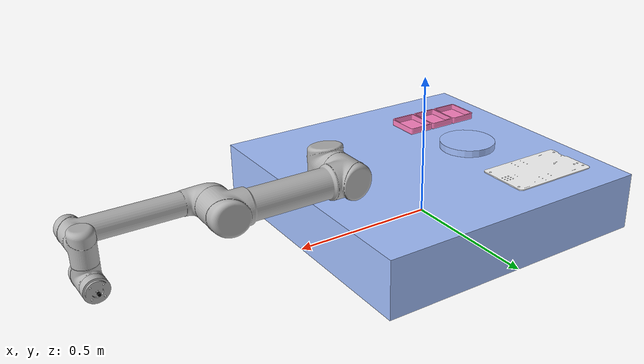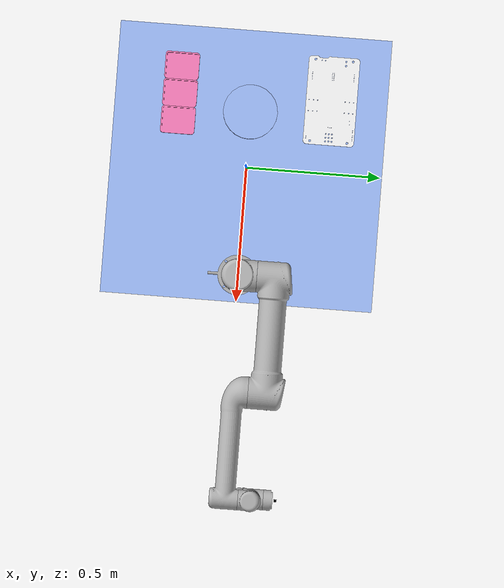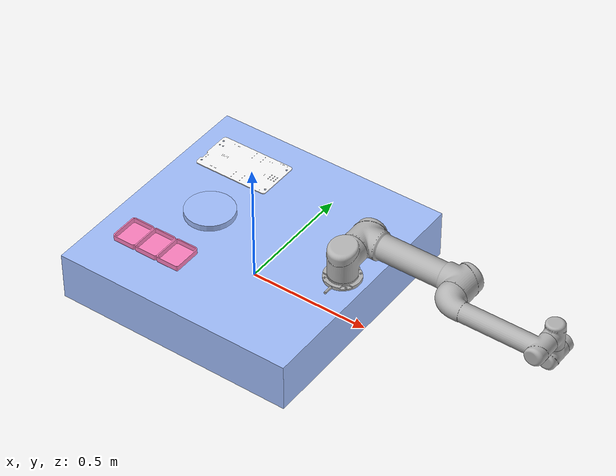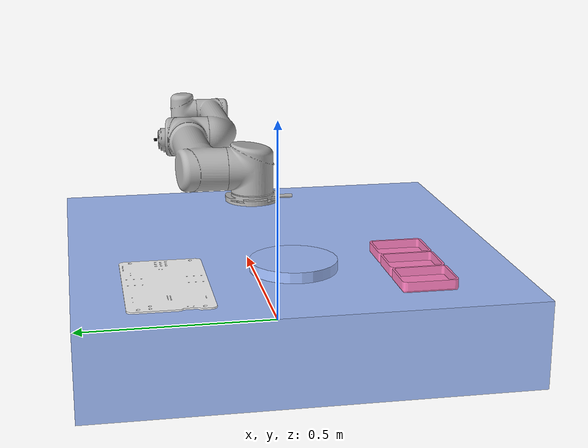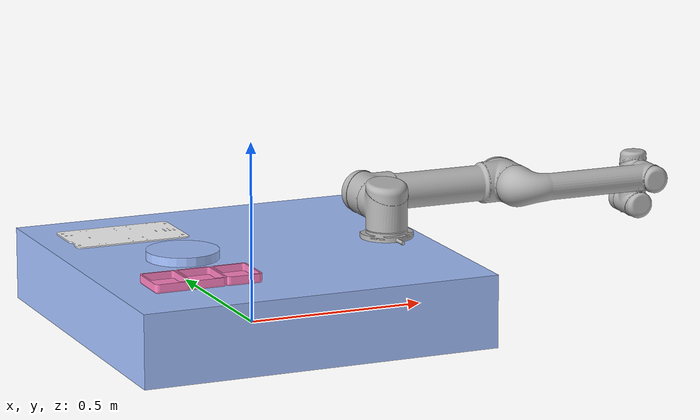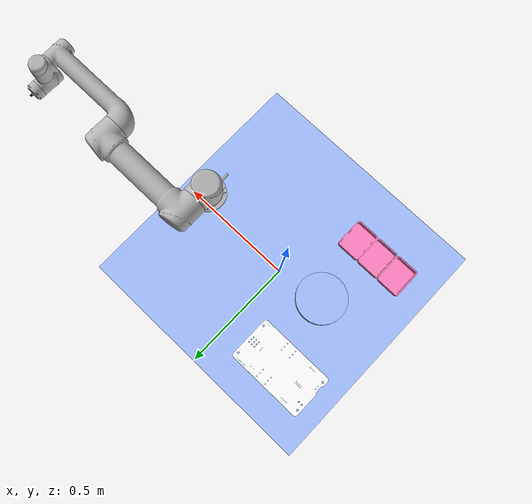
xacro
<?xml version="1.0"?>
<robot xmlns:xacro="http://ros.org/wiki/xacro"
       name="ur5" >

  <!-- common stuff -->
  <xacro:include filename="$(find subbotinny_ur5_vacuum)/urdf/ur5.material.xacro" />
  <!-- ur5 -->
  <xacro:include filename="$(find subbotinny_ur5_vacuum)/urdf/ur5.urdf.xacro" />
  <xacro:include filename="$(find subbotinny_ur5_vacuum)/urdf/common.gazebo.xacro" />
  <xacro:include filename="$(find subbotinny_ur5_vacuum)/urdf/pcb_components.urdf.xacro" />

  <xacro:macro name="box" params="suffix x y">
    <link name="box_${suffix}">
      <visual>
        <geometry>
          <mesh scale = "0.005 0.005 0.005" filename="package://subbotinny_ur5_vacuum/meshes/box.stl"/>
        </geometry>
        <xacro:insert_block name="pink" />
      </visual>
      <collision>
        <geometry>
          <mesh scale = "0.005 0.005 0.005" filename="package://subbotinny_ur5_vacuum/meshes/box.stl"/>
        </geometry>
      </collision>
    </link>
    <joint name="box_${suffix}_joint" type="fixed">
      <parent link="table" />
      <child link="box_${suffix}" />
      <origin xyz="${x * -0.1} ${y * -0.1} 0.2" />
    </joint>
  </xacro:macro>

  <!-- arm -->
  <xacro:ur5_robot prefix="" joint_limited="true"
    shoulder_pan_lower_limit="${-2*pi}" shoulder_pan_upper_limit="${2*pi}"
    shoulder_lift_lower_limit="${-pi}" shoulder_lift_upper_limit="${pi}"
    elbow_joint_lower_limit="${-pi}" elbow_joint_upper_limit="${pi}"
    wrist_1_lower_limit="${-pi}" wrist_1_upper_limit="${pi}"
    wrist_2_lower_limit="${-pi}" wrist_2_upper_limit="${pi}"
    wrist_3_lower_limit="${-pi}" wrist_3_upper_limit="${pi}"
  />
  <link name="world" />

  <link name="table">
    <visual>
      <geometry>
        <box size="1 1 0.2" />
      </geometry>
      <origin xyz="0 0 0.1" />
        <xacro:insert_block name="pastel_blue" />
    </visual>

    <collision>
      <geometry>
        <box size="1 1 0.2" />
      </geometry>
      <origin xyz="0 0 0.1" />
    </collision>

  </link>

  <joint name="world_joint" type="fixed">
    <parent link="world" />
    <child link = "table" />
    <origin xyz="0 0 0" rpy="0.0 0.0 0.0" />
  </joint>

  <joint name="table_joint" type="fixed">
    <parent link="table" />
    <child link = "base_link" />
    <origin xyz="0.4 0 0.2" rpy="0.0 0.0 0.0" />
  </joint> >

  <xacro:box suffix="1" x="1" y="2" />
  <xacro:box suffix="2" x="2" y="2" />
  <xacro:box suffix="3" x="3" y="2" />

  <link name="camera_stand">
    <visual>
      <geometry>
        <cylinder length="0.025" radius="0.1" />
      </geometry>
      <origin xyz="0 0 0" />
      <xacro:insert_block name="pastel_blue" />
    </visual>

    <collision>
      <geometry>
        <cylinder length="0.025" radius="0.1" />
      </geometry>
      <origin xyz="0 0 0" />
    </collision>
  </link>
  <joint name="camera_stand_joint" type="fixed">
    <parent link="table" />
    <child link="camera_stand" />
    <origin xyz="-0.2 0 0.2125" rpy="0 0 0" />
  </joint>

  <link name="camera" />
  <joint name="camera_joint" type="fixed">
    <parent link="camera_stand" />
    <child link="camera" />
    <origin xyz="0 0 0.05" rpy="0 ${radians(-90)} 0" />
  </joint>

  <link name="PCB">
    <visual>
      <geometry>
        <mesh scale = "0.0025 0.0025 0.0025" filename="package://subbotinny_ur5_vacuum/meshes/board.stl" />
      </geometry>
      <xacro:insert_block name="white" />
    </visual>
    <collision>
      <geometry>
        <mesh scale = "0.0025 0.0025 0.0025" filename="package://subbotinny_ur5_vacuum/meshes/board.stl" />
      </geometry>
    </collision>
  </link>
  <joint name="board_joint" type="fixed">
    <parent link="table" />
    <child link="PCB" />
    <origin xyz="-0.1 0.2 0.205" rpy="0.0 0.0 ${pi/2}"/>
  </joint>

</robot>

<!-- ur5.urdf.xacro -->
<robot xmlns:xacro="http://www.ros.org/wiki/xacro">

  <xacro:include filename="$(find subbotinny_ur5_vacuum)/urdf/ur.transmission.xacro" />

  <!-- Inertia parameters -->
  <xacro:property name="base_mass" value="4.0" />  <!-- This mass might be incorrect -->
  <xacro:property name="shoulder_mass" value="3.7000" />
  <xacro:property name="upper_arm_mass" value="8.3930" />
  <xacro:property name="forearm_mass" value="2.2750" />
  <xacro:property name="wrist_1_mass" value="1.2190" />
  <xacro:property name="wrist_2_mass" value="1.2190" />
  <xacro:property name="wrist_3_mass" value="0.1879" />
  <xacro:property name="height3" value="1" /> <!-- Link 3 -->
  <xacro:property name="camera_link" value="0.02" /> <!-- Size of square 'camera' box -->
  <xacro:property name="axel_offset" value="0.05" /> <!-- Space btw top of beam and the each joint -->
  <xacro:property name="shoulder_cog" value="0.0 0.00193 -0.02561" />
  <xacro:property name="upper_arm_cog" value="0.0 -0.024201 0.2125" />
  <xacro:property name="forearm_cog" value="0.0 0.0265 0.11993" />
  <xacro:property name="wrist_1_cog" value="0.0 0.110949 0.01634" />
  <xacro:property name="wrist_2_cog" value="0.0 0.0018 0.11099" />
  <xacro:property name="wrist_3_cog" value="0.0 0.001159 0.0" />

  <!-- Kinematic model -->
  <!-- Properties from urcontrol.conf -->
  <xacro:property name="ur5_d1" value="0.089159" />
  <xacro:property name="ur5_a2" value="-0.42500" />
  <xacro:property name="ur5_a3" value="-0.39225" />
  <xacro:property name="ur5_d4" value="0.10915" />
  <xacro:property name="ur5_d5" value="0.09465" />
  <xacro:property name="ur5_d6" value="0.0823" />

  <!-- Arbitrary offsets for shoulder/elbow joints -->
  <xacro:property name="shoulder_offset" value="0.13585" />  <!-- measured from model -->
  <xacro:property name="elbow_offset" value="-0.1197" /> <!-- measured from model -->

  <!-- link lengths used in model -->
  <xacro:property name="shoulder_height" value="${ur5_d1}" />
  <xacro:property name="upper_arm_length" value="${-ur5_a2}" />
  <xacro:property name="forearm_length" value="${-ur5_a3}" />
  <xacro:property name="wrist_1_length" value="${ur5_d4 - elbow_offset - shoulder_offset}" />
  <xacro:property name="wrist_2_length" value="${ur5_d5}" />
  <xacro:property name="wrist_3_length" value="${ur5_d6}" />
  <!--property name="shoulder_height" value="0.089159" /-->
  <!--property name="shoulder_offset" value="0.13585" /-->  <!-- shoulder_offset - elbow_offset + wrist_1_length = 0.10915 -->
  <!--property name="upper_arm_length" value="0.42500" /-->
  <!--property name="elbow_offset" value="0.1197" /-->       <!-- CAD measured -->
  <!--property name="forearm_length" value="0.39225" /-->
  <!--property name="wrist_1_length" value="0.093" /-->     <!-- CAD measured -->
  <!--property name="wrist_2_length" value="0.09465" /-->   <!-- In CAD this distance is 0.930, but in the spec it is 0.09465 -->
  <!--property name="wrist_3_length" value="0.0823" /-->

  <xacro:property name="shoulder_radius" value="0.060" />   <!-- manually measured -->
  <xacro:property name="upper_arm_radius" value="0.054" />  <!-- manually measured -->
  <xacro:property name="elbow_radius" value="0.060" />      <!-- manually measured -->
  <xacro:property name="forearm_radius" value="0.040" />    <!-- manually measured -->
  <xacro:property name="wrist_radius" value="0.045" />      <!-- manually measured -->

  <xacro:macro name="cylinder_inertial" params="radius length mass *origin">
    <inertial>
      <mass value="${mass}" />
      <xacro:insert_block name="origin" />
      <inertia ixx="${0.0833333 * mass * (3 * radius * radius + length * length)}" ixy="0.0" ixz="0.0"
        iyy="${0.0833333 * mass * (3 * radius * radius + length * length)}" iyz="0.0"
        izz="${0.5 * mass * radius * radius}" />
    </inertial>
  </xacro:macro>

  <xacro:macro name="ur5_robot" params="prefix joint_limited
     shoulder_pan_lower_limit:=${-pi}    shoulder_pan_upper_limit:=${pi}
     shoulder_lift_lower_limit:=${-pi}    shoulder_lift_upper_limit:=${pi}
     elbow_joint_lower_limit:=${-pi}    elbow_joint_upper_limit:=${pi}
     wrist_1_lower_limit:=${-pi}    wrist_1_upper_limit:=${pi}
     wrist_2_lower_limit:=${-pi}    wrist_2_upper_limit:=${pi}
     wrist_3_lower_limit:=${-pi}    wrist_3_upper_limit:=${pi}">

    <link name="${prefix}base_link" >
      <visual>
        <geometry>
          <mesh filename="package://ur_description/meshes/ur5/visual/base.dae" />
        </geometry>
        <material name="LightGrey">
          <color rgba="0.7 0.7 0.7 1.0"/>
        </material>
      </visual>
      <collision>
        <geometry>
          <mesh filename="package://ur_description/meshes/ur5/collision/base.stl" />
        </geometry>
      </collision>
      <xacro:cylinder_inertial radius="0.06" length="0.05" mass="${base_mass}">
        <origin xyz="0.0 0.0 0.0" rpy="0 0 0" />
      </xacro:cylinder_inertial>
    </link>

    <joint name="${prefix}shoulder_pan_joint" type="revolute">
      <parent link="${prefix}base_link" />
      <child link = "${prefix}shoulder_link" />
      <origin xyz="0.0 0.0 ${shoulder_height}" rpy="0.0 0.0 0.0" />
      <axis xyz="0 0 1" />
      <xacro:unless value="${joint_limited}">
        <limit lower="${-2.0 * pi}" upper="${2.0 * pi}" effort="150.0" velocity="3.15"/>
      </xacro:unless>
      <xacro:if value="${joint_limited}">
        <limit lower="${shoulder_pan_lower_limit}" upper="${shoulder_pan_upper_limit}" effort="150.0" velocity="3.15"/>
      </xacro:if>
      <dynamics damping="0.0" friction="0.0"/>
    </joint>

    <link name="${prefix}shoulder_link">
      <visual>
        <geometry>
          <mesh filename="package://ur_description/meshes/ur5/visual/shoulder.dae" />
        </geometry>
        <material name="LightGrey">
          <color rgba="0.7 0.7 0.7 1.0"/>
        </material>
      </visual>
      <collision>
        <geometry>
          <mesh filename="package://ur_description/meshes/ur5/collision/shoulder.stl" />
        </geometry>
      </collision>
      <xacro:cylinder_inertial radius="0.06" length="0.15" mass="${shoulder_mass}">
        <origin xyz="0.0 0.0 0.0" rpy="0 0 0" />
      </xacro:cylinder_inertial>
    </link>

    <joint name="${prefix}shoulder_lift_joint" type="revolute">
      <parent link="${prefix}shoulder_link" />
      <child link = "${prefix}upper_arm_link" />
      <origin xyz="0.0 ${shoulder_offset} 0.0" rpy="0.0 ${pi / 2.0} 0.0" />
      <axis xyz="0 1 0" />
      <xacro:unless value="${joint_limited}">
        <limit lower="${-2.0 * pi}" upper="${2.0 * pi}" effort="150.0" velocity="3.15"/>
      </xacro:unless>
      <xacro:if value="${joint_limited}">
        <limit lower="${shoulder_lift_lower_limit}" upper="${shoulder_lift_upper_limit}" effort="150.0" velocity="3.15"/>
      </xacro:if>
      <dynamics damping="0.0" friction="0.0"/>
    </joint>

    <link name="${prefix}upper_arm_link">
      <visual>
        <geometry>
          <mesh filename="package://ur_description/meshes/ur5/visual/upperarm.dae" />
        </geometry>
        <material name="LightGrey">
          <color rgba="0.7 0.7 0.7 1.0"/>
        </material>
      </visual>
      <collision>
        <geometry>
          <mesh filename="package://ur_description/meshes/ur5/collision/upperarm.stl" />
        </geometry>
      </collision>
      <xacro:cylinder_inertial radius="0.06" length="0.56" mass="${upper_arm_mass}">
        <origin xyz="0.0 0.0 0.28" rpy="0 0 0" />
      </xacro:cylinder_inertial>
    </link>

    <joint name="${prefix}elbow_joint" type="revolute">
      <parent link="${prefix}upper_arm_link" />
      <child link = "${prefix}forearm_link" />
      <origin xyz="0.0 ${elbow_offset} ${upper_arm_length}" rpy="0.0 0.0 0.0" />
      <axis xyz="0 1 0" />
      <xacro:unless value="${joint_limited}">
        <limit lower="${-pi}" upper="${pi}" effort="150.0" velocity="3.15"/>
      </xacro:unless>
      <xacro:if value="${joint_limited}">
        <limit lower="${elbow_joint_lower_limit}" upper="${elbow_joint_upper_limit}" effort="150.0" velocity="3.15"/>
      </xacro:if>
      <dynamics damping="0.0" friction="0.0"/>
    </joint>

    <link name="${prefix}forearm_link">
      <visual>
        <geometry>
          <mesh filename="package://ur_description/meshes/ur5/visual/forearm.dae" />
        </geometry>
        <material name="LightGrey">
          <color rgba="0.7 0.7 0.7 1.0"/>
        </material>
      </visual>
      <collision>
        <geometry>
          <mesh filename="package://ur_description/meshes/ur5/collision/forearm.stl" />
        </geometry>
      </collision>
      <xacro:cylinder_inertial radius="0.06" length="0.5" mass="${forearm_mass}">
        <origin xyz="0.0 0.0 0.25" rpy="0 0 0" />
      </xacro:cylinder_inertial>
    </link>

    <joint name="${prefix}wrist_1_joint" type="revolute">
      <parent link="${prefix}forearm_link" />
      <child link = "${prefix}wrist_1_link" />
      <origin xyz="0.0 0.0 ${forearm_length}" rpy="0.0 ${pi / 2.0} 0.0" />
      <axis xyz="0 1 0" />
      <xacro:unless value="${joint_limited}">
        <limit lower="${-2.0 * pi}" upper="${2.0 * pi}" effort="28.0" velocity="3.2"/>
      </xacro:unless>
      <xacro:if value="${joint_limited}">
        <limit lower="${wrist_1_lower_limit}" upper="${wrist_1_upper_limit}" effort="28.0" velocity="3.2"/>
      </xacro:if>
      <dynamics damping="0.0" friction="0.0"/>
    </joint>

    <link name="${prefix}wrist_1_link">
      <visual>
        <geometry>
          <mesh filename="package://ur_description/meshes/ur5/visual/wrist1.dae" />
        </geometry>
        <material name="LightGrey">
          <color rgba="0.7 0.7 0.7 1.0"/>
        </material>
      </visual>
      <collision>
        <geometry>
          <mesh filename="package://ur_description/meshes/ur5/collision/wrist1.stl" />
        </geometry>
      </collision>
      <xacro:cylinder_inertial radius="0.6" length="0.12" mass="${wrist_1_mass}">
        <origin xyz="0.0 0.0 0.0" rpy="0 0 0" />
      </xacro:cylinder_inertial>
    </link>

    <joint name="${prefix}wrist_2_joint" type="revolute">
      <parent link="${prefix}wrist_1_link" />
      <child link = "${prefix}wrist_2_link" />
      <origin xyz="0.0 ${wrist_1_length} 0.0" rpy="0.0 0.0 0.0" />
      <axis xyz="0 0 1" />
      <xacro:unless value="${joint_limited}">
        <limit lower="${-2.0 * pi}" upper="${2.0 * pi}" effort="28.0" velocity="3.2"/>
      </xacro:unless>
      <xacro:if value="${joint_limited}">
        <limit lower="${wrist_2_lower_limit}" upper="${wrist_2_upper_limit}" effort="28.0" velocity="3.2"/>
      </xacro:if>
      <dynamics damping="0.0" friction="0.0"/>
    </joint>

    <link name="${prefix}wrist_2_link">
      <visual>
        <geometry>
          <mesh filename="package://ur_description/meshes/ur5/visual/wrist2.dae" />
        </geometry>
        <material name="LightGrey">
          <color rgba="0.7 0.7 0.7 1.0"/>
        </material>
      </visual>
      <collision>
        <geometry>
          <mesh filename="package://ur_description/meshes/ur5/collision/wrist2.stl" />
        </geometry>
      </collision>
      <xacro:cylinder_inertial radius="0.6" length="0.12" mass="${wrist_2_mass}">
        <origin xyz="0.0 0.0 0.0" rpy="0 0 0" />
      </xacro:cylinder_inertial>
    </link>

    <joint name="${prefix}wrist_3_joint" type="revolute">
      <parent link="${prefix}wrist_2_link" />
      <child link = "${prefix}wrist_3_link" />
      <origin xyz="0.0 0.0 ${wrist_2_length}" rpy="0.0 0.0 0.0" />
      <axis xyz="0 1 0" />
      <xacro:unless value="${joint_limited}">
        <limit lower="${-2.0 * pi}" upper="${2.0 * pi}" effort="28.0" velocity="3.2"/>
      </xacro:unless>
      <xacro:if value="${joint_limited}">
        <limit lower="${wrist_3_lower_limit}" upper="${wrist_3_upper_limit}" effort="28.0" velocity="3.2"/>
      </xacro:if>
      <dynamics damping="0.0" friction="0.0"/>
    </joint>

    <link name="${prefix}wrist_3_link">
      <visual>
        <geometry>
          <mesh filename="package://ur_description/meshes/ur5/visual/wrist3.dae" />
        </geometry>
        <material name="LightGrey">
          <color rgba="0.7 0.7 0.7 1.0"/>
        </material>
      </visual>
      <collision>
        <geometry>
          <mesh filename="package://ur_description/meshes/ur5/collision/wrist3.stl" />
        </geometry>
      </collision>
      <xacro:cylinder_inertial radius="0.6" length="0.12" mass="${wrist_3_mass}">
        <origin xyz="0.0 0.0 0.0" rpy="0 0 0" />
      </xacro:cylinder_inertial>
    </link>

    <joint name="${prefix}ee_fixed_joint" type="fixed">
      <parent link="${prefix}wrist_3_link" />
      <child link = "${prefix}ee_link" />
      <origin xyz="0.0 ${wrist_3_length} 0.0" rpy="0.0 0.0 ${pi/2.0}" />
    </joint>

    <link name="${prefix}ee_link">
      <collision>
        <geometry>
          <box size="0.01 0.01 0.01"/>
        </geometry>
        <surface>
          <friction>
            <ode>
              <mu>10</mu>
              <mu2>10</mu2>
            </ode>
          </friction>
        </surface>
        <origin rpy="0 0 0" xyz="-0.01 0 0"/>
      </collision>
    </link>

  <link name="vacuum_gripper">
    <gravity>0</gravity>
    <visual>
      <origin rpy="0 0 0" xyz="0 0 0"/>
      <geometry>
        <cylinder radius="0.005" length="0.01"/>
      </geometry>
      <material name="transparent">
        <color rgba="0 0 0 0"/>
      </material>
    </visual>

    <collision>
      <origin rpy="0 0 0" xyz="0 0 0"/>
      <geometry>
        <cylinder radius="0.005" length="0.01"/>
      </geometry>
    </collision>
    <inertial>
      <origin rpy="0 0 0" xyz="0.000000 0.000000 0.000000"/>
      <mass value="0.0001"/>
      <inertia ixx="1e-08" ixy="0" ixz="0" iyy="1e-08" iyz="0" izz="1e-08"/>
    </inertial>
  </link>

  <joint name="gripper_joint" type="fixed">
    <axis xyz="1 0 0" />
    <parent link="ee_link" />
    <child link="vacuum_gripper" />
    <origin rpy="0 1.5708 0" xyz="0.01 0 0" />
    <limit effort="50" velocity="50" lower="0" upper="0" />
    <dynamics damping="0.0" friction="10"/>
  </joint>

    <xacro:ur_arm_transmission prefix="${prefix}" />
    <!--xacro:ur_arm_gazebo prefix="${prefix}" /-->

    <!-- ROS base_link to UR 'Base' Coordinates transform -->
    <link name="${prefix}base"/>
    <joint name="${prefix}base_link-base_fixed_joint" type="fixed">
      <!-- NOTE: this rotation is only needed as long as base_link itself is
                 not corrected wrt the real robot (ie: rotated over 180
                 degrees)
      -->
      <origin xyz="0 0 0" rpy="0 0 ${-pi}"/>
      <parent link="${prefix}base_link"/>
      <child link="${prefix}base"/>
    </joint>

    <!-- Frame coincident with all-zeros TCP on UR controller -->
    <link name="${prefix}tool0"/>
    <joint name="${prefix}wrist_3_link-tool0_fixed_joint" type="fixed">
      <origin xyz="0 ${wrist_3_length} 0" rpy="${pi/-2.0} 0 0"/>
      <parent link="${prefix}wrist_3_link"/>
      <child link="${prefix}tool0"/>
    </joint>

  </xacro:macro>
</robot>
